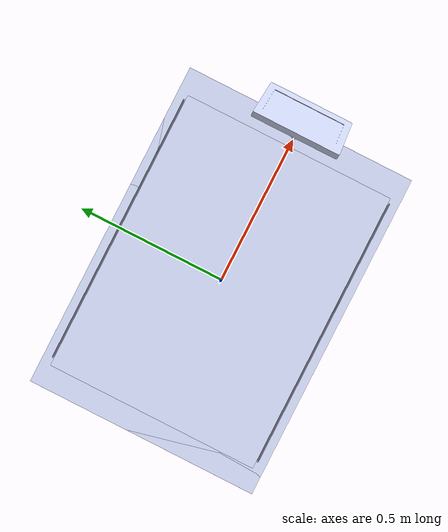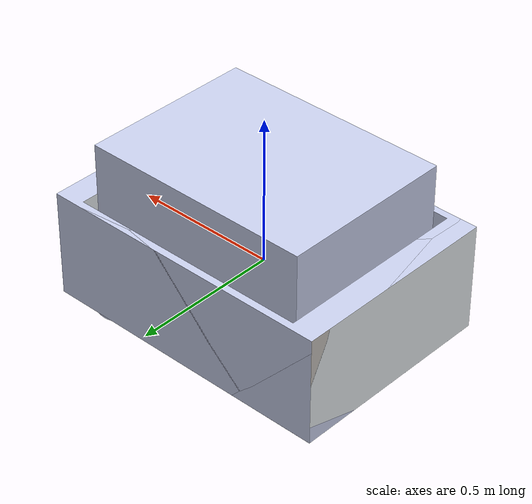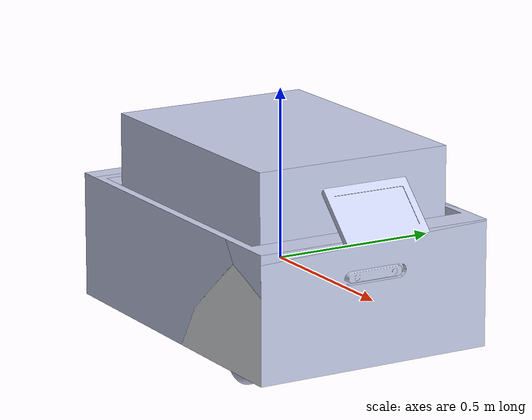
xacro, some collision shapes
<?xml version="1.0" encoding="utf-8"?>
<robot name="adr_description" xmlns:xacro="http://ros.org/wiki/xacro">
  <xacro:include filename="adr_description/urdf/adr_description.gazebo.xacro" />

  <!-- base -->

  <!-- body-->
  <link name="body">
    <inertial>
      <origin xyz="0.002527 0.014122 2.6333E-08" rpy="0 0 0" />
      <mass value="25" />
      <inertia ixx="2.0665" ixy="0" ixz="0" iyy="3.4602" iyz="0" izz="5.0679" />
    </inertial>
    <visual>
      <origin xyz="0 0 0" rpy="0 0 0" />
      <geometry>
        <mesh filename="package://adr_description/meshes/body.STL" />
      </geometry>
      <material name="">
        <color rgba="0.79216 0.81961 0.93333 1" />
      </material>
    </visual>
    <collision>
      <origin xyz="0 0 0" rpy="0 0 0" />
      <geometry>
        <mesh filename="package://adr_description/meshes/body.STL" />
      </geometry>
    </collision>
  </link>

  <link name="front_right_wheel_link">
    <inertial>
      <origin xyz="0 0 0.025" rpy="0 0 0" />
      <mass value="0.5" />
      <inertia ixx="0.000851" ixy="0" ixz="0" iyy="0.000851" iyz="0" izz="0.001513" />
    </inertial>
    <visual>
      <origin xyz="0 0 0" rpy="0 0 0" />
      <geometry>
        <mesh filename="package://adr_description/meshes/front_right_wheel_link.STL" />
      </geometry>
      <material name="">
        <color rgba="0.79216 0.81961 0.93333 1" />
      </material>
    </visual>
    <collision>
      <origin xyz="0 0 0" rpy="0 0 0" />
      <geometry>
        <mesh filename="package://adr_description/meshes/front_right_wheel_link.STL" />
      </geometry>
    </collision>
  </link>

  <joint name="front_right_wheel_joint" type="continuous">
    <origin xyz="0.355 -0.295 -0.145" rpy="1.5708 -0.51499 0" />
    <parent link="body" />
    <child link="front_right_wheel_link" />
    <axis xyz="0 0 1" />
  </joint>

  <link name="front_left_wheel_link">
    <inertial>
      <origin xyz="0 0 -0.025" rpy="0 0 0" />
      <mass value="0.5" />
      <inertia ixx="0.000851" ixy="0" ixz="0" iyy="0.000851" iyz="0" izz="0.001513" />
    </inertial>
    <visual>
      <origin xyz="0 0 0" rpy="0 0 0" />
      <geometry>
        <mesh filename="package://adr_description/meshes/front_left_wheel_link.STL" />
      </geometry>
      <material name="">
        <color rgba="0.79216 0.81961 0.93333 1" />
      </material>
    </visual>
    <collision>
      <origin xyz="0 0 0" rpy="0 0 0" />
      <geometry>
        <mesh filename="package://adr_description/meshes/front_left_wheel_link.STL" />
      </geometry>
    </collision>
  </link>

  <joint name="front_left_wheel_joint" type="continuous">
    <origin xyz="0.355 0.295 -0.145" rpy="1.5708 -0.010202 0" />
    <parent link="body" />
    <child link="front_left_wheel_link" />
    <axis xyz="0 0 1" />
  </joint>

    <!-- rear wheels -->
  <link name="rear_right_wheel_holder_link">
    <inertial>
      <origin xyz="0.019738 -0.017918 4.8612E-10" rpy="0 0 0" />
      <mass value="0.125" />
      <inertia ixx="5.8E-05" ixy="0" ixz="0" iyy="9.6E-05" iyz="0" izz="0.000104" />
    </inertial>
    <visual>
      <origin xyz="0 0 0" rpy="0 0 0" />
      <geometry>
        <mesh filename="package://adr_description/meshes/rear_right_wheel_holder_link.STL" />
      </geometry>
      <material name="">
        <color rgba="0.77647 0.75686 0.73725 1" />
      </material>
    </visual>
    <collision>
      <origin xyz="0 0 0" rpy="0 0 0" />
      <geometry>
        <mesh filename="package://adr_description/meshes/rear_right_wheel_holder_link.STL" />
      </geometry>
    </collision>
  </link>

  <joint name="rear_right_wheel_holder_joint" type="continuous">
    <origin xyz="-0.31 -0.215 -0.118" rpy="1.5708 0 3.1416" />
    <parent link="body" />
    <child link="rear_right_wheel_holder_link" />
    <axis xyz="0 1 0" />
  </joint>

  <link name="rear_right_wheel_link">
    <inertial>
      <origin xyz="1.1102E-16 -0.01 1.1102E-16" rpy="0 0 0" />
      <mass value="0.25" />
      <inertia ixx="0.000122" ixy="0" ixz="0" iyy="0.000122" iyz="0" izz="0.000201" />
    </inertial>
    <visual>
      <origin xyz="0 0 0" rpy="0 0 0" />
      <geometry>
        <mesh filename="package://adr_description/meshes/rear_right_wheel_link.STL" />
      </geometry>
      <material name="">
        <color rgba="0.79216 0.81961 0.93333 1" />
      </material>
    </visual>
    <collision>
      <origin xyz="0 0 0" rpy="0 0 0" />
      <geometry>
        <mesh filename="package://adr_description/meshes/rear_right_wheel_link.STL" />
      </geometry>
    </collision>
  </link>

  <joint name="rear_right_wheel_joint" type="continuous">
    <origin xyz="0.047511 -0.075249 0" rpy="3.1416 0 1.0182" />
    <parent link="rear_right_wheel_holder_link" />
    <child link="rear_right_wheel_link" />
    <axis xyz="0 0 1" />
  </joint>

  <link name="rear_left_wheel_holder_link">
    <inertial>
      <origin xyz="0.019738 -0.017918 4.8612E-10" rpy="0 0 0" />
      <mass value="0.125" />
      <inertia ixx="5.8E-05" ixy="0" ixz="0" iyy="9.6E-05" iyz="0" izz="0.000104" />
    </inertial>
    <visual>
      <origin xyz="0 0 0" rpy="0 0 0" />
      <geometry>
        <mesh filename="package://adr_description/meshes/rear_left_wheel_holder_link.STL" />
      </geometry>
      <material name="">
        <color rgba="0.77647 0.75686 0.73725 1" />
      </material>
    </visual>
    <collision>
      <origin xyz="0 0 0" rpy="0 0 0" />
      <geometry>
        <mesh filename="package://adr_description/meshes/rear_left_wheel_holder_link.STL" />
      </geometry>
    </collision>
  </link>

  <joint name="rear_left_wheel_holder_joint" type="continuous">
    <origin xyz="-0.31 0.215 -0.118" rpy="1.5708 0 3.1416" />
    <parent link="body" />
    <child link="rear_left_wheel_holder_link" />
    <axis xyz="0 1 0" />
  </joint>

  <link name="rear_left_wheel_link">
    <inertial>
      <origin xyz="2.7756E-17 -0.01 2.7756E-17" rpy="0 0 0" />
      <mass value="0.15829" />
      <inertia ixx="0.000122" ixy="0" ixz="0" iyy="0.000122" iyz="0" izz="0.000201" />
    </inertial>
    <visual>
      <origin xyz="0 0 0" rpy="0 0 0" />
      <geometry>
        <mesh filename="package://adr_description/meshes/rear_left_wheel_link.STL" />
      </geometry>
      <material name="">
        <color rgba="0.79216 0.81961 0.93333 1" />
      </material>
    </visual>
    <collision>
      <origin xyz="0 0 0" rpy="0 0 0" />
      <geometry>
        <mesh filename="package://adr_description/meshes/rear_left_wheel_link.STL" />
      </geometry>
    </collision>
  </link>

  <joint name="rear_left_wheel_joint" type="continuous">
    <origin xyz="0.045998 -0.077143 0" rpy="3.1416 0 0.77512" />
    <parent link="rear_left_wheel_holder_link" />
    <child link="rear_left_wheel_link" />
    <axis xyz="0 0 1" />
  </joint>

  <link name="zed_link">
    <inertial>
      <origin xyz="4.4834E-10 4.3912E-06 0.015479" rpy="0 0 0" />
      <mass value="0.1" />
      <inertia ixx="1.5E-05" ixy="0" ixz="0" iyy="0.000245" iyz="0" izz="0.000247" />
    </inertial>
    <visual>
      <origin xyz="0 0 0" rpy="0 0 0" />
      <geometry>
        <mesh filename="package://adr_description/meshes/zed_link.STL" />
      </geometry>
      <material name="">
        <color rgba="0.79216 0.81961 0.93333 1" />
      </material>
    </visual>
    <collision>
      <origin xyz="0 0 0" rpy="0 0 0" />
      <geometry>
        <mesh filename="package://adr_description/meshes/zed_link.STL" />
      </geometry>
    </collision>
  </link>

  <joint name="zed_joint" type="fixed">
    <origin xyz="0.4816 0.00048374 0.079104" rpy="1.5708 -0.00010913 1.5708" />
    <parent link="body" />
    <child link="zed_link" />
    <axis xyz="0 0 0" />
  </joint>

  <link name="touch_screen_holder_link">
    <inertial>
      <origin xyz="0.0050744 0.027898 -8.9499E-17" rpy="0 0 0" />
      <mass value="0.02" />
      <inertia ixx="1E-06" ixy="0" ixz="0" iyy="6E-06" iyz="0" izz="6E-06" />
    </inertial>
    <visual>
      <origin xyz="0 0 0" rpy="0 0 0" />
      <geometry>
        <mesh filename="package://adr_description/meshes/touch_screen_holder_link.STL" />
      </geometry>
      <material name="">
        <color rgba="0.89412 0.91373 0.92941 1" />
      </material>
    </visual>
    <collision>
      <origin xyz="0 0 0" rpy="0 0 0" />
      <geometry>
        <mesh filename="package://adr_description/meshes/touch_screen_holder_link.STL" />
      </geometry>
    </collision>
  </link>

  <joint name="touch_screen_holder_joint" type="fixed">
    <origin xyz="0.49421 0 0.23821" rpy="-1.5708 0.7854 0" />
    <parent link="body" />
    <child link="touch_screen_holder_link" />
    <axis xyz="0 0 0" />
  </joint>

  <link name="touchscreen_link">
    <inertial>
      <origin xyz="6.0462E-14 -0.0099994 0.0074779" rpy="0 0 0" />
      <mass value="0.4" />
      <inertia ixx="0.001129" ixy="0" ixz="0" iyy="0.002357" iyz="0" izz="0.003467" />
    </inertial>
    <visual>
      <origin xyz="0 0 0" rpy="0 0 0" />
      <geometry>
        <mesh filename="package://adr_description/meshes/touchscreen_link.STL" />
      </geometry>
      <material name="">
        <color rgba="0.79216 0.81961 0.93333 1" />
      </material>
    </visual>
    <collision>
      <origin xyz="0 0 0" rpy="0 0 0" />
      <geometry>
        <mesh filename="package://adr_description/meshes/touchscreen_link.STL" />
      </geometry>
    </collision>
  </link>

  <joint name="touchscreen_joint" type="fixed">
    <origin xyz="-0.01 -0.015001 0" rpy="1.5707 -1.5708 0" />
    <parent link="touch_screen_holder_link" />
    <child link="touchscreen_link" />
    <axis xyz="0 0 0" />
  </joint>

  <link name="load_link">
    <inertial>
      <origin xyz="-1.4311E-17 5.5511E-17 7.3581E-17" rpy="0 0 0" />
      <mass value="12" />
      <inertia ixx="0.52" ixy="0" ixz="0" iyy="0.8" iyz="0" izz="1" />
    </inertial>
    <visual>
      <origin xyz="0 0 0" rpy="0 0 0" />
      <geometry>
        <mesh filename="package://adr_description/meshes/load_link.STL" />
      </geometry>
      <material name="">
        <color rgba="0.79216 0.81961 0.93333 1" />
      </material>
    </visual>
    <collision>
      <origin xyz="0 0 0" rpy="0 0 0" />
      <geometry>
        <mesh filename="package://adr_description/meshes/load_link.STL" />
      </geometry>
    </collision>
  </link>

  <joint name="load_joint" type="fixed">
    <origin xyz="0 0 0.18" rpy="1.5708 0 0" />
    <parent link="body" />
    <child link="load_link" />
    <axis xyz="0 0 0" />
  </joint>

   <!-- caster back -->
   <joint name="caster_back_joint" type="fixed">
    <parent link="body" />
    <child link="caster_back" />
    <origin xyz="-0.081 0 -0.004" rpy="-1.57 0 0" />
  </joint>

  <link name="caster_back">
    <collision>
      <origin xyz="0 0.001 0" rpy="0 0 0" />
      <geometry>
        <box size="0.030 0.009 0.020" />
      </geometry>
    </collision>

    <inertial>
      <origin xyz="0 0 0" />
      <mass value="0.005" />
      <inertia ixx="0.001" ixy="0.0" ixz="0.0" iyy="0.001" iyz="0.0" izz="0.001" />
    </inertial>
  </link>

  <!-- imu -->
  <joint name="imu_sensor_joint" type="fixed">
    <parent link="body" />
    <child link="imu_sensor" />
    <origin xyz="-0.032 0 0.068" rpy="0 0 0" />
  </joint>

  <link name="imu_sensor" />

  <!-- lidar -->
  <joint name="scan_joint" type="fixed">
    <parent link="body" />
    <child link="base_scan" />
    <origin xyz="-0.032 0 0.30" rpy="0 0 0" />
  </joint>

  <link name="base_scan">

    <visual>
      <origin xyz="0 0 0.0" rpy="0 0 0" />
      <geometry>
        <mesh filename="package://adr_description/meshes/lds.STL" scale="0.001 0.001 0.001" />
      </geometry>
      <material name="dark" />
    </visual>

    <collision>
      <origin xyz="0.015 0 -0.0065" rpy="0 0 0" />
      <geometry>
        <cylinder length="0.0315" radius="0.055" />
      </geometry>
    </collision>

    <inertial>
      <mass value="0.114" />
      <origin xyz="0 0 0" />
      <inertia ixx="0.001" ixy="0.0" ixz="0.0" iyy="0.001" iyz="0.0" izz="0.001" />
    </inertial>

  </link>

</robot>
